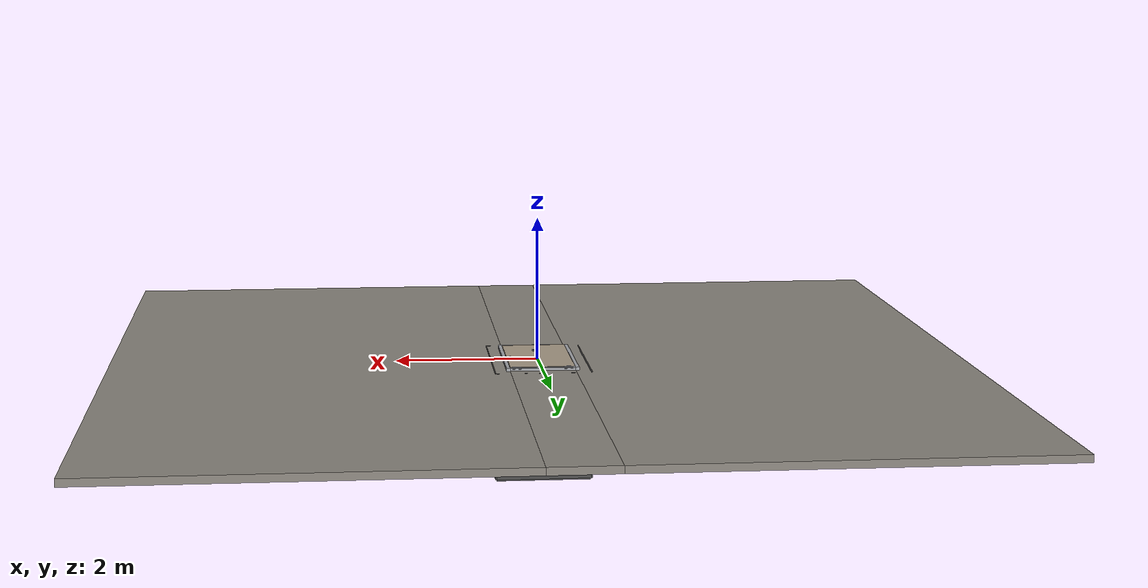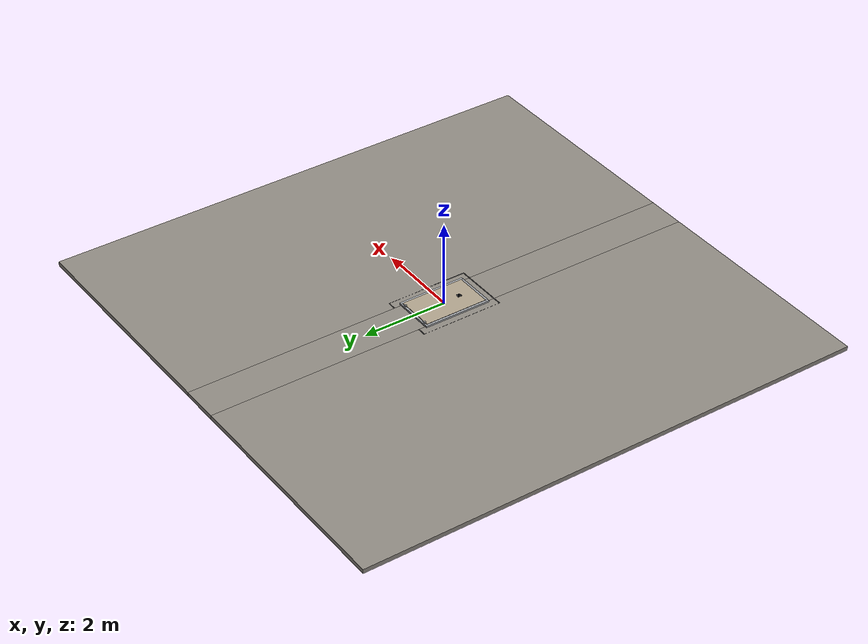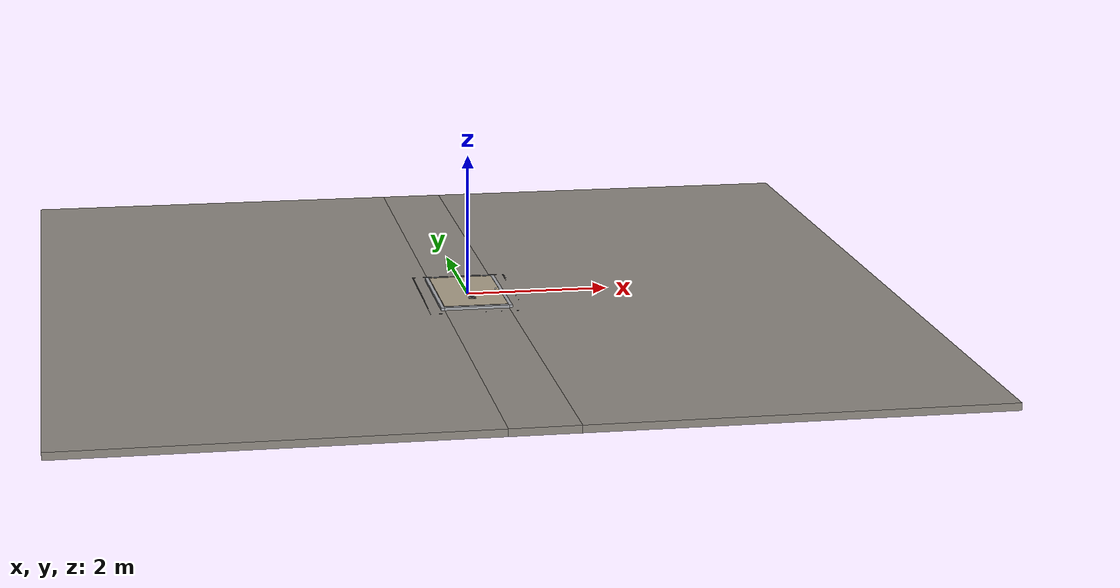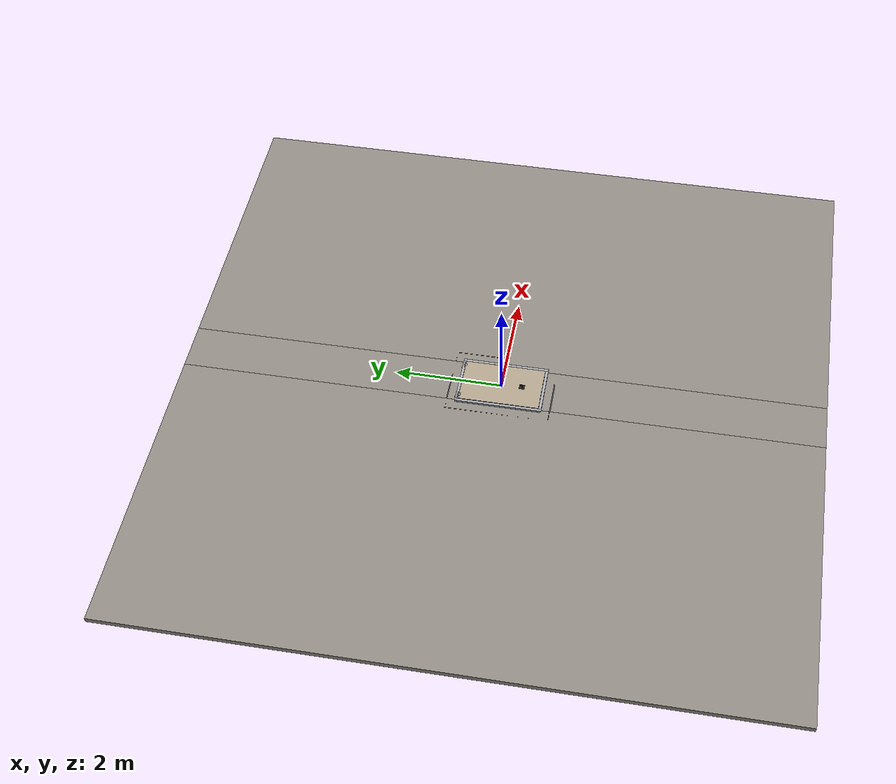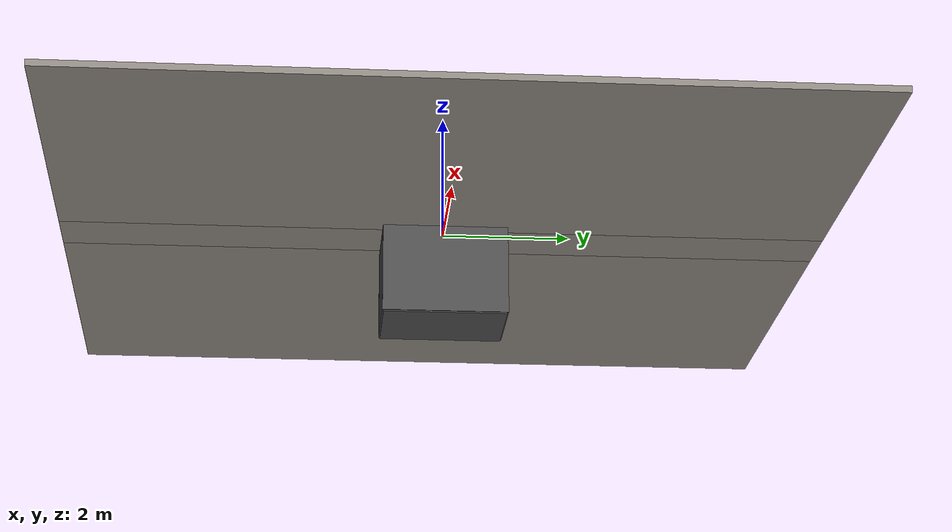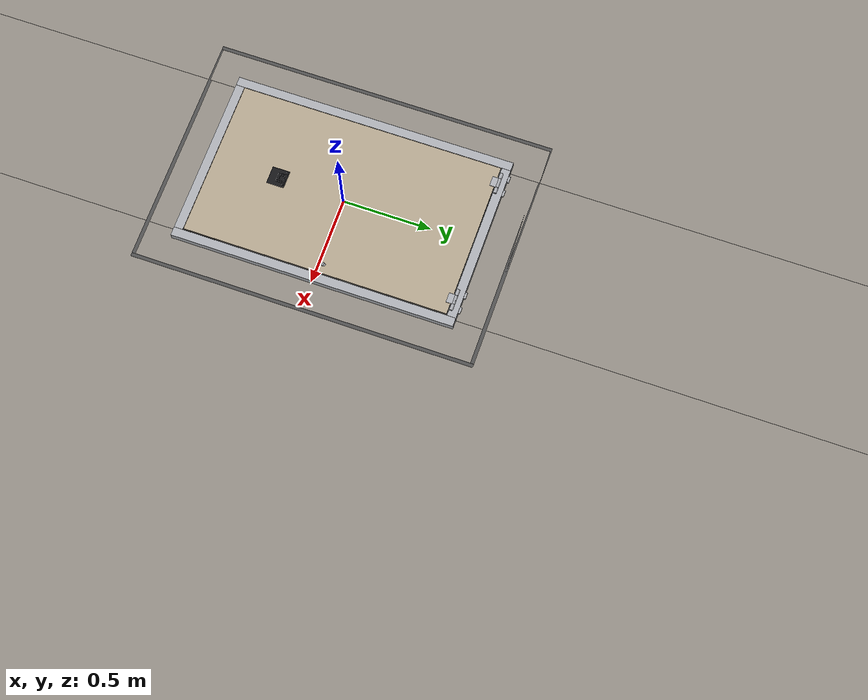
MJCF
<?xml version="1.0" ?>
<mujoco model="db0380_hatch_floor_full">
  <compiler angle="radian" meshdir="../../hardware" texturedir="../../textures" autolimits="true" inertiafromgeom="false"/>
  <option timestep="0.002" integrator="implicitfast" cone="elliptic" impratio="10" noslip_iterations="3">
    <flag multiccd="enable"/>
  </option>
  <size memory="16M"/>
  <default>
    <geom condim="4" solref="0.005 1" solimp="0.95 0.99 0.001"/>
    <joint solreflimit="0.005 1" solimplimit="0.95 0.99 0.001"/>
    <tendon solreflimit="0.005 1"/>
    <equality solref="0.002 1"/>
  </default>
  <visual>
    <headlight ambient="0.4 0.4 0.4" diffuse="0.7 0.7 0.7" specular="0.2 0.2 0.2"/>
    <quality shadowsize="4096"/>
    <map znear="0.01" zfar="60"/>
  </visual>
  <asset>
    <material name="mat_floor" rgba="0.55 0.53 0.5 1" specular="0.2" shininess="0.15" reflectance="0"/>
    <material name="mat_wall" rgba="0.78 0.76 0.7 1" specular="0.2" shininess="0.1" reflectance="0"/>
    <material name="mat_pit" rgba="0.3 0.3 0.3 1" specular="0.2" shininess="0.1" reflectance="0"/>
    <material name="mat_frame" rgba="0.65 0.66 0.68 1" specular="0.74" shininess="0.5" reflectance="0.36"/>
    <material name="mat_leaf" rgba="0.675 0.625 0.54 1" specular="0.2" shininess="0.4" reflectance="0"/>
    <material name="mat_hinge" rgba="0.65 0.66 0.68 1" specular="0.74" shininess="0.5" reflectance="0.36"/>
    <material name="mat_op_wrought_iron" rgba="0.08 0.08 0.09 1" specular="0.56" shininess="0.25" reflectance="0.24"/>
    <material name="mat_strut" rgba="0.75 0.76 0.77 1" specular="0.8" shininess="0.65" reflectance="0.4"/>
    <texture name="skybox" type="skybox" builtin="gradient" rgb1="0.6 0.7 0.85" rgb2="0.9 0.92 0.95" width="256" height="256"/>
  </asset>
  <worldbody>
    <light name="sun" pos="1.5 -2.5 4" dir="-0.3 0.5 -0.8" directional="true" diffuse="0.8 0.8 0.8" specular="0.3 0.3 0.3" castshadow="true"/>
    <light name="fill" pos="-1.5 2.5 3" dir="0.3 -0.5 -0.7" directional="true" diffuse="0.35 0.35 0.4" castshadow="false"/>
    <camera name="robot_view" pos="0 -2.040625 1.326375" xyaxes="1 0 0 0 0.26963 0.962964" fovy="52"/>
    <camera name="far_view" pos="0 2.040625 1.326375" xyaxes="-1 0 0 0 -0.26963 0.962964" fovy="52"/>
    <camera name="iso" pos="1.550875 -1.714125 1.652875" xyaxes="0.741536 0.670913 0 -0.242917 0.268487 0.932151" fovy="46"/>
    <camera name="detail_handle" pos="0.35 -0.8875 0.902" xyaxes="0.843661 0.536875 0 -0.426006 0.669439 0.608581" fovy="38"/>
    <geom name="floor_a" type="box" size="2.7725 6 0.05" pos="-3.2275 0 -0.05" material="mat_floor" group="0" contype="1" conaffinity="1" friction="0.6 0.005 0.0001" density="2400"/>
    <geom name="floor_b" type="box" size="2.7725 6 0.05" pos="3.2275 0 -0.05" material="mat_floor" group="0" contype="1" conaffinity="1" friction="0.6 0.005 0.0001" density="2400"/>
    <geom name="floor_c" type="box" size="0.455 2.6225 0.05" pos="0 -3.3775 -0.05" material="mat_floor" group="0" contype="1" conaffinity="1" friction="0.6 0.005 0.0001" density="2400"/>
    <geom name="floor_d" type="box" size="0.455 2.6225 0.05" pos="0 3.3775 -0.05" material="mat_floor" group="0" contype="1" conaffinity="1" friction="0.6 0.005 0.0001" density="2400"/>
    <geom name="pit_floor" type="box" size="0.655 0.955 0.02" pos="0 0 -1.5" material="mat_pit" group="0" contype="1" conaffinity="1" friction="0.6 0.005 0.0001" density="2400"/>
    <geom name="pit_wall_l" type="box" size="0.01 0.975 0.75" pos="-0.665 0 -0.75" material="mat_pit" group="0" contype="1" conaffinity="1" friction="0.6 0.005 0.0001" density="2400"/>
    <geom name="pit_wall_r" type="box" size="0.01 0.975 0.75" pos="0.665 0 -0.75" material="mat_pit" group="0" contype="1" conaffinity="1" friction="0.6 0.005 0.0001" density="2400"/>
    <geom name="pit_wall_n" type="box" size="0.655 0.01 0.75" pos="0 -0.965 -0.75" material="mat_pit" group="0" contype="1" conaffinity="1" friction="0.6 0.005 0.0001" density="2400"/>
    <geom name="pit_wall_f" type="box" size="0.655 0.01 0.75" pos="0 0.965 -0.75" material="mat_pit" group="0" contype="1" conaffinity="1" friction="0.6 0.005 0.0001" density="2400"/>
    <geom name="curb_l" type="box" size="0.025 0.805 0.02" pos="-0.48 0 0.02" material="mat_frame" group="0" contype="1" conaffinity="1" friction="0.6 0.005 0.0001" density="7850"/>
    <geom name="curb_r" type="box" size="0.025 0.805 0.02" pos="0.48 0 0.02" material="mat_frame" group="0" contype="1" conaffinity="1" friction="0.6 0.005 0.0001" density="7850"/>
    <geom name="curb_n" type="box" size="0.455 0.025 0.02" pos="0 -0.78 0.02" material="mat_frame" group="0" contype="1" conaffinity="1" friction="0.6 0.005 0.0001" density="7850"/>
    <geom name="curb_f" type="box" size="0.455 0.025 0.02" pos="0 0.78 0.02" material="mat_frame" group="0" contype="1" conaffinity="1" friction="0.6 0.005 0.0001" density="7850"/>
    <geom name="hatch_hinge_0_curb_n" type="cylinder" size="0.01 0.018" pos="-0.404 0.765 0.04" quat="0.707107 0 0.707107 0" material="mat_hinge" group="1" contype="0" conaffinity="0" density="7850"/>
    <geom name="hatch_hinge_0_curb_strap_n" type="box" size="0.018 0.032 0.005" pos="-0.404 0.785 0.03" material="mat_hinge" group="1" contype="0" conaffinity="0" density="7850"/>
    <geom name="hatch_hinge_0_curb_p" type="cylinder" size="0.01 0.018" pos="-0.316 0.765 0.04" quat="0.707107 0 0.707107 0" material="mat_hinge" group="1" contype="0" conaffinity="0" density="7850"/>
    <geom name="hatch_hinge_0_curb_strap_p" type="box" size="0.018 0.032 0.005" pos="-0.316 0.785 0.03" material="mat_hinge" group="1" contype="0" conaffinity="0" density="7850"/>
    <geom name="hatch_hinge_1_curb_n" type="cylinder" size="0.01 0.018" pos="0.316 0.765 0.04" quat="0.707107 0 0.707107 0" material="mat_hinge" group="1" contype="0" conaffinity="0" density="7850"/>
    <geom name="hatch_hinge_1_curb_strap_n" type="box" size="0.018 0.032 0.005" pos="0.316 0.785 0.03" material="mat_hinge" group="1" contype="0" conaffinity="0" density="7850"/>
    <geom name="hatch_hinge_1_curb_p" type="cylinder" size="0.01 0.018" pos="0.404 0.765 0.04" quat="0.707107 0 0.707107 0" material="mat_hinge" group="1" contype="0" conaffinity="0" density="7850"/>
    <geom name="hatch_hinge_1_curb_strap_p" type="box" size="0.018 0.032 0.005" pos="0.404 0.785 0.03" material="mat_hinge" group="1" contype="0" conaffinity="0" density="7850"/>
    <site name="approach_point" pos="0 -1.5 0" quat="1 0 0 0" size="0.05" rgba="0.2 0.9 0.2 0.5" group="4"/>
    <site name="goal_point" pos="0 0 -1" quat="1 0 0 0" size="0.05" rgba="0.2 0.9 0.2 0.5" group="4"/>
    <site name="door_plane_center" pos="0 0 0" quat="1 0 0 0" size="0.02" rgba="0.2 0.9 0.2 0.5" group="4"/>
    <body name="hatch" pos="0 0.755 0.04">
      <inertial pos="0.033906 -0.713689 -0.012518" mass="12.3715" quat="0.718535 0.018534 0.025579 0.694773" diaginertia="0.970050827 2.369095213 3.285261181"/>
      <joint name="hatch_hinge" type="hinge" axis="-1 0 0" pos="0 0.01 0" limited="true" range="0 1.308997" damping="30.677737" frictionloss="3.355694" stiffness="12.75" springref="-3.333333" armature="0.02"/>
      <geom name="hatch_slab" type="box" size="0.45 0.751 0.006" pos="0 -0.755 0" material="mat_leaf" group="0" contype="1" conaffinity="1" friction="0.6 0.005 0.0001" density="1"/>
      <geom name="hatch_hinge_0" type="cylinder" size="0.01 0.028" pos="-0.36 0.01 0" quat="0.707107 0 0.707107 0" material="mat_hinge" group="1" contype="0" conaffinity="0" density="7850"/>
      <geom name="hatch_hinge_0_strap" type="box" size="0.028 0.023 0.003" pos="-0.36 -0.007 0.005" material="mat_hinge" group="1" contype="0" conaffinity="0" density="7850"/>
      <geom name="hatch_hinge_1" type="cylinder" size="0.01 0.028" pos="0.36 0.01 0" quat="0.707107 0 0.707107 0" material="mat_hinge" group="1" contype="0" conaffinity="0" density="7850"/>
      <geom name="hatch_hinge_1_strap" type="box" size="0.028 0.023 0.003" pos="0.36 -0.007 0.005" material="mat_hinge" group="1" contype="0" conaffinity="0" density="7850"/>
      <geom name="ring_recess" type="box" size="0.05 0.05 0.001" pos="0 -1.1325 0.007" material="mat_op_wrought_iron" group="1" contype="0" conaffinity="0" density="7800"/>
      <geom name="gas_strut" type="cylinder" size="0.01 0.2" pos="0.4 -0.604 -0.15" quat="0.316228 -0.948683 0 0" material="mat_strut" group="1" contype="0" conaffinity="0" density="7900"/>
      <body name="ring" pos="0 -1.1325 0.006">
        <inertial pos="0 0.019982 0.002997" mass="0.2225" quat="-0.058307 0.998299 0 0" diaginertia="0.000076951 0.000083485 0.000154999"/>
        <joint name="ring_hinge" type="hinge" axis="1 0 0" limited="true" range="0 1.392122" damping="0.003476" armature="0.0001"/>
        <geom name="ring_geom" type="capsule" size="0.006 0.035" pos="0 0.04 0.006" quat="0.707107 0 0.707107 0" material="mat_op_wrought_iron" group="0" contype="1" conaffinity="1" friction="0.6 0.005 0.0001" density="7800"/>
        <geom name="ring_knuckle" type="cylinder" size="0.008 0.022" pos="0 0 0" quat="0.707107 0 0.707107 0" material="mat_op_wrought_iron" group="1" contype="0" conaffinity="0" density="7800"/>
        <geom name="ring_arm_n" type="capsule" size="0.006 0.02" pos="-0.02 0.02 0.003" quat="0.707107 -0.707107 0 0" material="mat_op_wrought_iron" group="1" contype="0" conaffinity="0" density="7800"/>
        <geom name="ring_arm_p" type="capsule" size="0.006 0.02" pos="0.02 0.02 0.003" quat="0.707107 -0.707107 0 0" material="mat_op_wrought_iron" group="1" contype="0" conaffinity="0" density="7800"/>
        <site name="grip_ring" pos="0 0.04 0.006" quat="1 0 0 0" size="0.01" rgba="0.2 0.9 0.2 0.5" group="4"/>
      </body>
    </body>
  </worldbody>
  <sensor>
    <jointpos name="hatch_hinge_pos" joint="hatch_hinge"/>
    <jointvel name="hatch_hinge_vel" joint="hatch_hinge"/>
    <jointpos name="ring_hinge_pos" joint="ring_hinge"/>
    <jointvel name="ring_hinge_vel" joint="ring_hinge"/>
  </sensor>
</mujoco>
